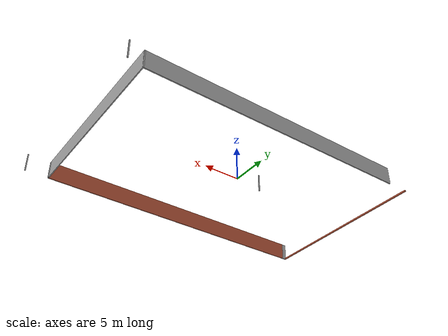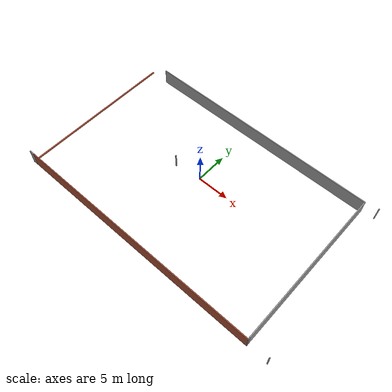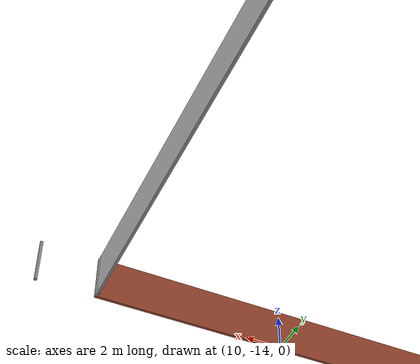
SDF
<?xml version='1.0'?>
<sdf version='1.6'>
  <model name='Simple_Rect'>
    <pose frame=''>1.554 -1.5125 0 0 -0 0</pose>

    <link name='Wall_1'>
      <collision name='Wall_1_Collision'>
        <geometry>
          <box>
            <size>0.15 0.15 2.5</size>
          </box>
        </geometry>
        <pose frame=''>0 0 1.25 0 -0 0</pose>
      </collision>
      <visual name='Wall_1_Visual'>
        <pose frame=''>0 0 1.25 0 -0 0</pose>
        <geometry>
          <box>
            <size>0.15 0.15 2.5</size>
          </box>
        </geometry>
        <material>
          <script>
            <uri>file://media/materials/scripts/gazebo.material</uri>
            <name>Gazebo/Grey</name>
          </script>
          <ambient>1 1 1 1</ambient>
        </material>
        <meta>
          <layer>0</layer>
        </meta>
      </visual>
      <pose frame=''>-5.684 0.892501 0 0 -0 0</pose>

    </link>
    <link name='Wall_11'>
      <collision name='Wall_11_Collision'>
        <geometry>
          <box>
            <size>0.15 0.15 2.5</size>
          </box>
        </geometry>
        <pose frame=''>0 0 1.25 0 -0 0</pose>
      </collision>
      <visual name='Wall_11_Visual'>
        <pose frame=''>0 0 1.25 0 -0 0</pose>
        <geometry>
          <box>
            <size>0.15 0.15 2.5</size>
          </box>
        </geometry>
        <material>
          <script>
            <uri>file://media/materials/scripts/gazebo.material</uri>
            <name>Gazebo/Grey</name>
          </script>
          <ambient>1 1 1 1</ambient>
        </material>
        <meta>
          <layer>0</layer>
        </meta>
      </visual>
      <pose frame=''>21.834 -12.6625 0 0 -0 0</pose>
    </link>

    <link name='Wall_12'>
      <collision name='Wall_12_Collision'>
        <geometry>
          <box>
            <size>0.15 0.15 2.5</size>
          </box>
        </geometry>
        <pose frame=''>0 0 1.25 0 -0 0</pose>
      </collision>
      <visual name='Wall_12_Visual'>
        <pose frame=''>0 0 1.25 0 -0 0</pose>
        <geometry>
          <box>
            <size>0.15 0.15 2.5</size>
          </box>
        </geometry>
        <material>
          <script>
            <uri>file://media/materials/scripts/gazebo.material</uri>
            <name>Gazebo/Grey</name>
          </script>
          <ambient>1 1 1 1</ambient>
        </material>
        <meta>
          <layer>0</layer>
        </meta>
      </visual>
      <pose frame=''>21.834 -12.6625 0 0 -0 0</pose>
    </link>

    <link name='Wall_33'>
      <collision name='Wall_33_Collision'>
        <geometry>
          <box>
            <size>37.5 0.15 2.5</size>
          </box>
        </geometry>
        <pose frame=''>0 0 1.25 0 -0 0</pose>
      </collision>
      <visual name='Wall_33_Visual'>
        <pose frame=''>0 0 1.25 0 -0 0</pose>
        <geometry>
          <box>
            <size>37.5 0.15 2.5</size>
          </box>
        </geometry>
        <material>
          <script>
            <uri>file://media/materials/scripts/gazebo.material</uri>
            <name>Gazebo/Grey</name>
          </script>
          <ambient>1 1 1 1</ambient>
        </material>
        <meta>
          <layer>0</layer>
        </meta>
      </visual>
      <pose frame=''>0.017102 12.2905 0 0 -0 0.002194</pose>
    </link>

    <link name='Wall_34'>
      <collision name='Wall_34_Collision'>
        <geometry>
          <box>
            <size>24.8324 0.15 2.5</size>
          </box>
        </geometry>
        <pose frame=''>0 0 1.25 0 -0 0</pose>
      </collision>
      <visual name='Wall_34_Visual'>
        <pose frame=''>0 0 1.25 0 -0 0</pose>
        <geometry>
          <box>
            <size>24.8324 0.15 2.5</size>
          </box>
        </geometry>
        <material>
          <script>
            <uri>file://media/materials/scripts/gazebo.material</uri>
            <name>Gazebo/Grey</name>
          </script>
          <ambient>1 1 1 1</ambient>
        </material>
        <meta>
          <layer>0</layer>
        </meta>
      </visual>
      <pose frame=''>18.692 -0.009499 0 0 0 -1.5708</pose>
    </link>

    <link name='Wall_35'>
      <collision name='Wall_35_Collision'>
        <geometry>
          <box>
            <size>0.46213 0.15 2.5</size>
          </box>
        </geometry>
        <pose frame=''>0 0 1.25 0 -0 0</pose>
      </collision>
      <visual name='Wall_35_Visual'>
        <pose frame=''>0 0 1.25 0 -0 0</pose>
        <geometry>
          <box>
            <size>0.46213 0.15 2.5</size>
          </box>
        </geometry>
        <material>
          <script>
            <uri>file://media/materials/scripts/gazebo.material</uri>
            <name>Gazebo/Grey</name>
          </script>
          <ambient>1 1 1 1</ambient>
        </material>
        <meta>
          <layer>0</layer>
        </meta>
      </visual>
      <pose frame=''>18.6965 -12.5065 0 0 0 -1.54196</pose>
    </link>

    <link name='Wall_36'>
      <collision name='Wall_36_Collision'>
        <geometry>
          <box>
            <size>0.16 0.15 2.5</size>
          </box>
        </geometry>
        <pose frame=''>0 0 1.25 0 -0 0</pose>
      </collision>
      <visual name='Wall_36_Visual'>
        <pose frame=''>0 0 1.25 0 -0 0</pose>
        <geometry>
          <box>
            <size>0.16 0.15 2.5</size>
          </box>
        </geometry>
        <material>
          <script>
            <uri>file://media/materials/scripts/gazebo.material</uri>
            <name>Gazebo/Grey</name>
          </script>
          <ambient>1 1 1 1</ambient>
        </material>
        <meta>
          <layer>0</layer>
        </meta>
      </visual>
      <pose frame=''>18.706 -12.6625 0 0 -0 0</pose>
    </link>

    <link name='Wall_37'>
      <collision name='Wall_37_Collision'>
        <geometry>
          <box>
            <size>0.16 0.15 2.5</size>
          </box>
        </geometry>
        <pose frame=''>0 0 1.25 0 -0 0</pose>
      </collision>
      <visual name='Wall_37_Visual'>
        <pose frame=''>0 0 1.25 0 -0 0</pose>
        <geometry>
          <box>
            <size>0.16 0.15 2.5</size>
          </box>
        </geometry>
        <material>
          <script>
            <uri>file://media/materials/scripts/gazebo.material</uri>
            <name>Gazebo/Grey</name>
          </script>
          <ambient>1 1 1 1</ambient>
        </material>
        <meta>
          <layer>0</layer>
        </meta>
      </visual>
      <pose frame=''>18.706 -12.6625 0 0 -0 3.14159</pose>
    </link>

    <link name='Wall_4'>
      <collision name='Wall_4_Collision'>
        <geometry>
          <box>
            <size>40 0.15 2.5</size>
          </box>
        </geometry>
        <pose frame=''>0 0 1.25 0 -0 0</pose>
      </collision>
      <visual name='Wall_4_Visual'>
        <pose frame=''>0 0 1.25 0 -0 0</pose>
        <geometry>
          <box>
            <size>40 0.15 2.5</size>
          </box>
        </geometry>
        <material>
          <script>
            <uri>file://media/materials/scripts/gazebo.material</uri>
            <name>Gazebo/Bricks</name>
          </script>
          <ambient>0.760784 0.662745 0.627451 1</ambient>
        </material>
        <meta>
          <layer>0</layer>
        </meta>
      </visual>
      <pose frame=''>-1.224 -12.6625 0 0 -0 3.14159</pose>
    </link>

    <link name='Wall_5'>
      <collision name='Wall_5_Collision'>
        <geometry>
          <box>
            <size>0.81 0.15 2.5</size>
          </box>
        </geometry>
        <pose frame=''>0 0 1.25 0 -0 0</pose>
      </collision>
      <visual name='Wall_5_Visual'>
        <pose frame=''>0 0 1.25 0 -0 0</pose>
        <geometry>
          <box>
            <size>0.81 0.15 2.5</size>
          </box>
        </geometry>
        <material>
          <script>
            <uri>file://media/materials/scripts/gazebo.material</uri>
            <name>Gazebo/Grey</name>
          </script>
          <ambient>1 1 1 1</ambient>
        </material>
        <meta>
          <layer>0</layer>
        </meta>
      </visual>
      <pose frame=''>-21.479 -12.6625 0 0 -0 3.14159</pose>
    </link>

    <link name='Wall_6'>
      <collision name='Wall_6_Collision'>
        <geometry>
          <box>
            <size>25 0.2 0.2</size>
          </box>
        </geometry>
        <pose frame=''>0 0 0.1 0 -0 0</pose>
      </collision>
      <visual name='Wall_6_Visual'>
        <pose frame=''>0 0 0.1 0 -0 0</pose>
        <geometry>
          <box>
            <size>25 0.2 0.2</size>
          </box>
        </geometry>
        <material>
          <script>
            <uri>file://media/materials/scripts/gazebo.material</uri>
            <name>Gazebo/Bricks</name>
          </script>
          <ambient>0.760784 0.662745 0.627451 1</ambient>
        </material>
        <meta>
          <layer>0</layer>
        </meta>
      </visual>
      <pose frame=''>-21.809 -0.262499 0 0 -0 1.5708</pose>
    </link>

    <link name='Wall_9'>
      <collision name='Wall_9_Collision'>
        <geometry>
          <box>
            <size>0.15 0.15 2.5</size>
          </box>
        </geometry>
        <pose frame=''>0 0 1.25 0 -0 0</pose>
      </collision>
      <visual name='Wall_9_Visual'>
        <pose frame=''>0 0 1.25 0 -0 0</pose>
        <geometry>
          <box>
            <size>0.15 0.15 2.5</size>
          </box>
        </geometry>
        <material>
          <script>
            <uri>file://media/materials/scripts/gazebo.material</uri>
            <name>Gazebo/Grey</name>
          </script>
          <ambient>1 1 1 1</ambient>
        </material>
        <meta>
          <layer>0</layer>
        </meta>
      </visual>
      <pose frame=''>20.701 12.6875 0 0 -0 0</pose>
    </link>

    <static>1</static>
  </model>
</sdf>
